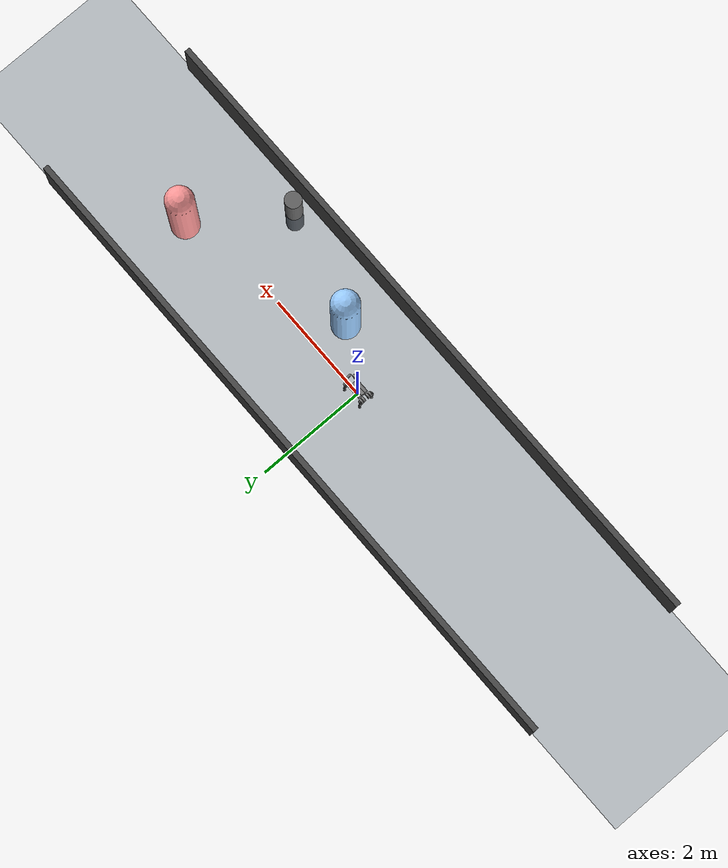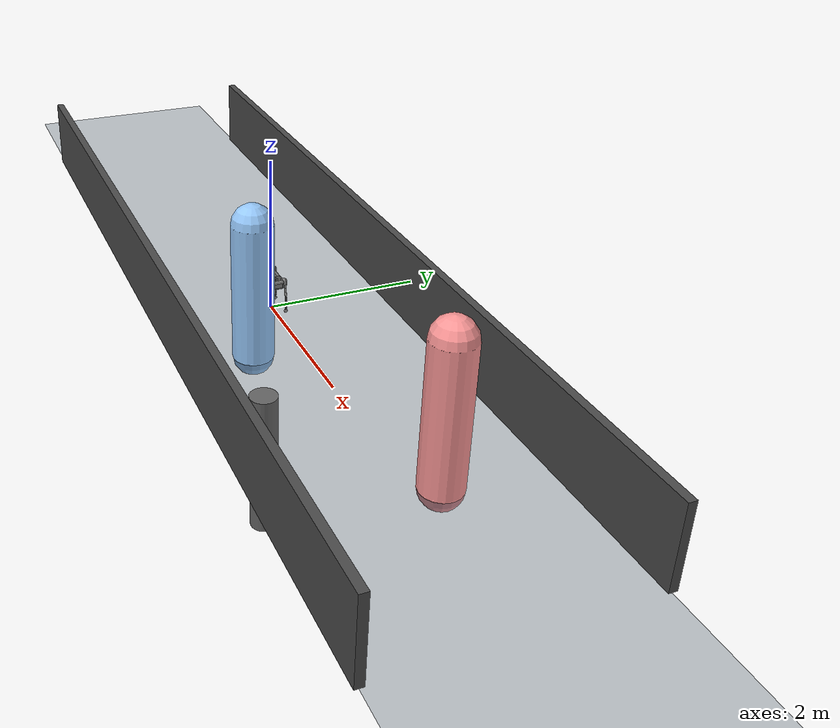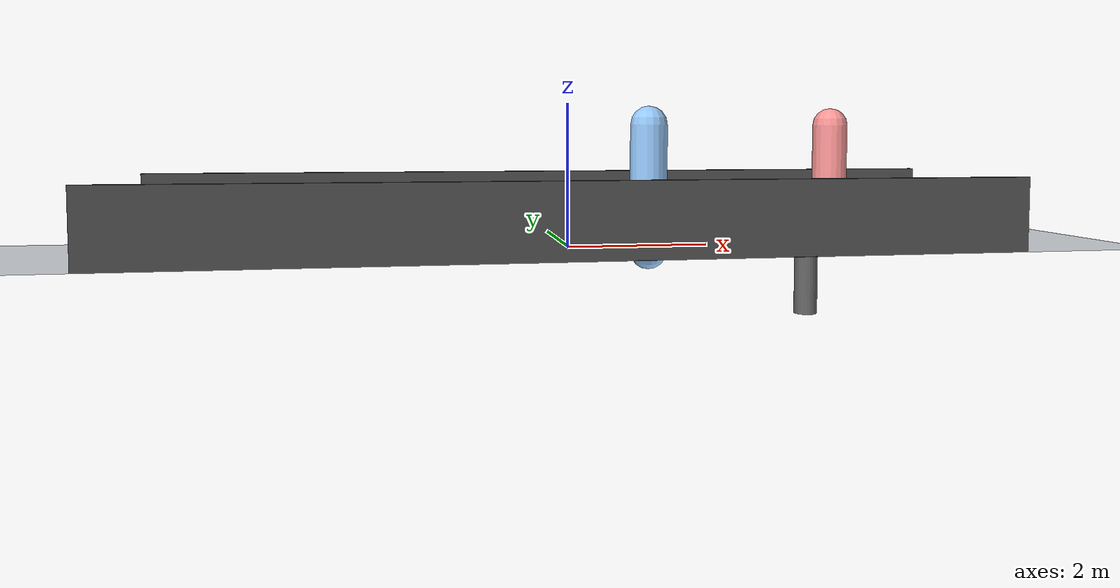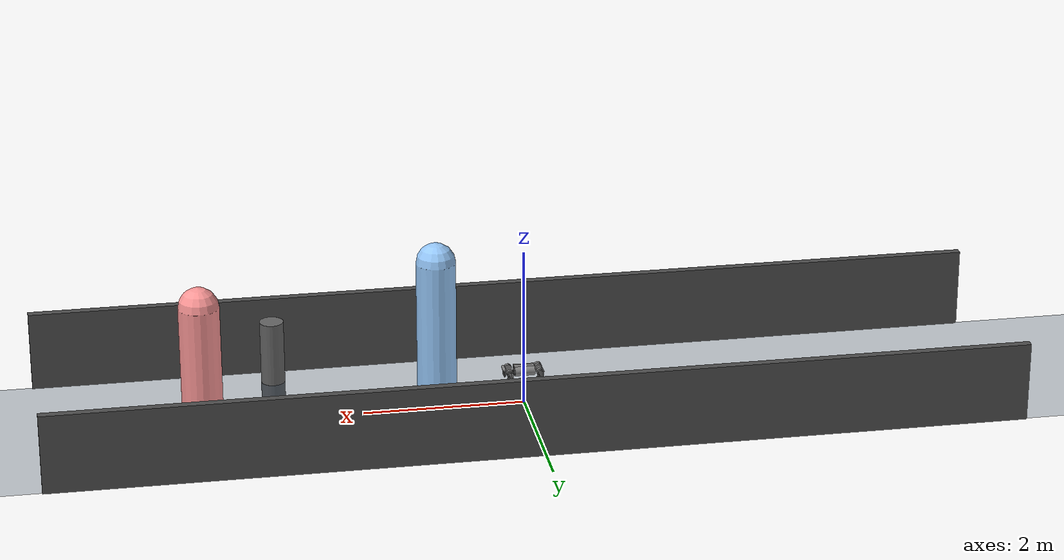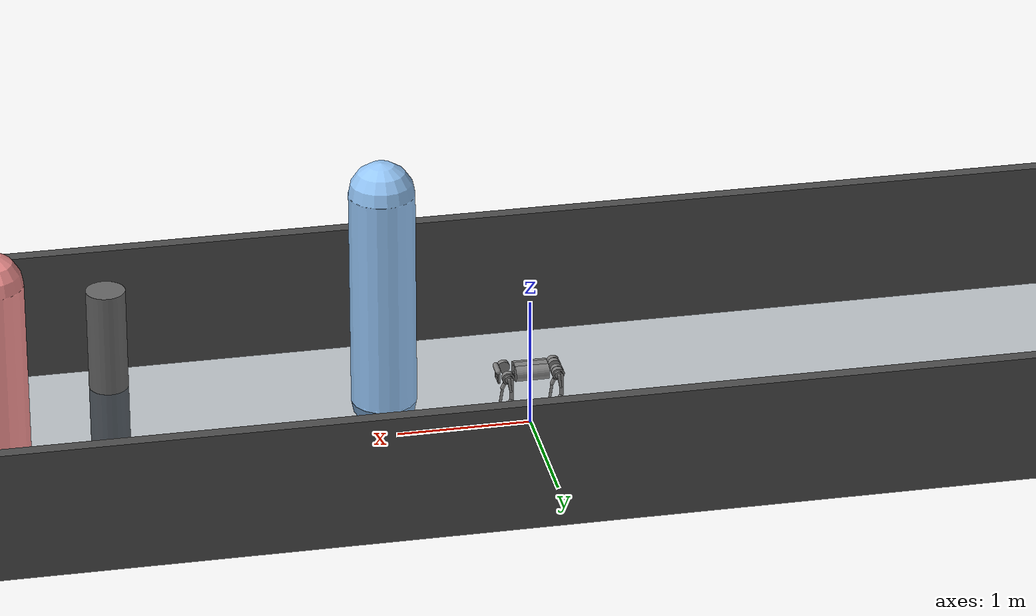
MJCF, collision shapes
<mujoco model="scene5_real_sidewalk">
  <compiler angle="degree"/>
  <option timestep="0.002" gravity="0 0 -9.81"/>
  <include file="unitree_go1/go1.xml"/>

  <asset>
    <texture name="sky" type="skybox" builtin="gradient"
             rgb1="0.45 0.55 0.75" rgb2="0.08 0.10 0.18" width="512" height="512"/>
    <texture name="tex_floor" type="2d" builtin="checker"
             width="512" height="512" rgb1="0.2 0.3 0.4" rgb2="0.1 0.15 0.2"
             mark="cross" markrgb="0.8 0.8 0.8"/>
    <material name="mat_floor" texture="tex_floor" reflectance="0.2"/>
  </asset>

  <worldbody>
    <light name="sun" pos="0 0 5" dir="0 0 -1" directional="true"
           diffuse="1 1 1" specular="0.1 0.1 0.1"/>

    <!-- Floor: 12m long, 4m wide sidewalk -->
    <geom name="floor" type="plane" size="8 1.5 0.1" material="mat_floor"/>

    <!-- Sidewalk curbs (left and right) -->
    <geom name="curb_left"  type="box" pos="0  1.5 0.5" size="6 0.05 0.5" rgba="0.3 0.3 0.3 1"/>
    <geom name="curb_right" type="box" pos="0 -1.5 0.5" size="6 0.05 0.5" rgba="0.3 0.3 0.3 1"/>

    <!-- Oncoming pedestrian (Against Traffic): moves leftward (-X) -->
    <body name="person1" pos="4 0.3 0">
      <joint name="person1_slide" type="slide" axis="1 0 0" limited="true" range="-6 6"/>
      <geom type="capsule" size="0.25" fromto="0 0 0 0 0 1.7" rgba="1 0.6 0.6 1"/>
    </body>

    <!-- Same-direction pedestrian (With Traffic): moves rightward (+X) -->
    <body name="person2" pos="1 -0.6 0">
      <joint name="person2_slide" type="slide" axis="1 0 0" limited="true" range="-6 6"/>
      <geom type="capsule" size="0.25" fromto="0 0 0 0 0 1.7" rgba="0.6 0.8 1 1"/>
    </body>

    <!-- Optional: static obstacle on right (to encourage right-side bias) -->
    <body name="lamp_post" pos="3 -1.2 0" quat="1 0 0 0">
      <geom type="cylinder" size="0.15 0.8" rgba="0.4 0.4 0.4 1"/>
    </body>
  </worldbody>
</mujoco>

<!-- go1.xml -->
<mujoco model="go1">
  <compiler angle="radian" meshdir="assets" autolimits="true"/>

  <option cone="elliptic" impratio="100"/>

  <default>
    <default class="go1">
      <geom friction="0.6" margin="0.001" condim="1"/>
      <joint axis="0 1 0" damping="2" armature="0.01" frictionloss="0.2"/>
      <position kp="100" forcerange="-23.7 23.7"/>
      <default class="abduction">
        <joint axis="1 0 0" damping="1" range="-0.863 0.863"/>
        <position ctrlrange="-0.863 0.863"/>
      </default>
      <default class="hip">
        <joint range="-0.686 4.501"/>
        <position ctrlrange="-0.686 4.501"/>
      </default>
      <default class="knee">
        <joint range="-2.818 -0.888"/>
        <position forcerange="-35.55 35.55" ctrlrange="-2.818 -0.888"/>
      </default>
      <default class="visual">
        <geom type="mesh" contype="0" conaffinity="0" group="2" material="dark"/>
      </default>
      <default class="collision">
        <geom group="3" type="capsule"/>
        <default class="hip_left1">
          <geom size="0.046 0.02" pos="0 0.045 0" quat="1 1 0 0" type="cylinder"/>
        </default>
        <default class="hip_left2">
          <geom size="0.031 0.02" pos="0 0.065 0" quat="1 1 0 0" type="cylinder"/>
        </default>
        <default class="hip_left3">
          <geom size="0.046 0.02" quat="1 1 0 0" type="cylinder"/>
        </default>
        <default class="hip_right1">
          <geom size="0.046 0.02" pos="0 -0.045 0" quat="1 1 0 0" type="cylinder"/>
        </default>
        <default class="hip_right2">
          <geom size="0.031 0.02" pos="0 -0.065 0" quat="1 1 0 0" type="cylinder"/>
        </default>
        <default class="hip_right3">
          <geom size="0.046 0.02" quat="1 1 0 0" type="cylinder"/>
        </default>
        <default class="thigh1">
          <geom size="0.015" fromto="-0.02 0 0 -0.02 0 -0.16"/>
        </default>
        <default class="thigh2">
          <geom size="0.015" fromto="0 0 0 -0.02 0 -0.1"/>
        </default>
        <default class="thigh3">
          <geom size="0.015" fromto="-0.02 0 -0.16 0 0 -0.2"/>
        </default>
        <default class="calf1">
          <geom size="0.01" fromto="0 0 0 0.02 0 -0.13"/>
        </default>
        <default class="calf2">
          <geom size="0.01" fromto="0.02 0 -0.13 0 0 -0.2"/>
        </default>
        <default class="foot">
          <geom type="sphere" size="0.023" pos="0 0 -0.213" priority="1" solimp="0.015 1 0.023" condim="6"
            friction="0.8 0.02 0.01"/>
        </default>
      </default>
    </default>
  </default>

  <asset>
    <material name="dark" rgba="0.2 0.2 0.2 1"/>
    <mesh class="go1" file="assets/trunk.stl"/>
    <mesh class="go1" file="assets/hip.stl"/>
    <mesh class="go1" file="assets/thigh_mirror.stl"/>
    <mesh class="go1" file="assets/calf.stl"/>
    <mesh class="go1" file="assets/thigh.stl"/>
  </asset>

  <worldbody>
    <light name="spotlight" mode="targetbodycom" target="trunk" pos="0 -1 2"/>
    <body name="trunk" pos="0 0 0.445" childclass="go1">
      <camera name="tracking" mode="trackcom" pos="0 -1 0.8" xyaxes="1 0 0 0 1 1"/>
      <site name="head" pos="0.3 0 0" rgba="1 0 0 1" size="0.02" group="5"/>
      <inertial pos="0.0223 0.002 -0.0005" quat="-0.00342088 0.705204 0.000106698 0.708996" mass="5.204"
        diaginertia="0.0716565 0.0630105 0.0168101"/>
      <freejoint/>
      <geom class="visual" mesh="trunk"/>
      <geom class="collision" size="0.125 0.04 0.057" type="box"/>
      <geom class="collision" quat="1 0 1 0" pos="0 -0.04 0" size="0.058 0.125" type="cylinder"/>
      <geom class="collision" quat="1 0 1 0" pos="0 +0.04 0" size="0.058 0.125" type="cylinder"/>
      <geom class="collision" pos="0.25 0 0" size="0.005 0.06 0.05" type="box"/>
      <geom class="collision" pos="0.25 0.06 -0.01" size="0.009 0.035"/>
      <geom class="collision" pos="0.25 -0.06 -0.01" size="0.009 0.035"/>
      <geom class="collision" pos="0.25 0 -0.05" size="0.01 0.06" quat="1 1 0 0"/>
      <geom class="collision" pos="0.255 0 0.0355" size="0.021 0.052" quat="1 1 0 0"/>
      <site name="imu" pos="0 0 0"/>
      <body name="FR_hip" pos="0.1881 -0.04675 0">
        <inertial pos="-0.0049166 0.00762615 -8.865e-05" quat="0.507341 0.514169 0.495027 0.482891" mass="0.68"
          diaginertia="0.000734064 0.000468438 0.000398719"/>
        <joint class="abduction" name="FR_hip_joint"/>
        <geom class="visual" mesh="hip" quat="1 0 0 0"/>
        <geom class="hip_right1"/>
        <geom class="hip_right2"/>
        <body name="FR_thigh" pos="0 -0.08 0">
          <inertial pos="-0.00304722 0.019315 -0.0305004" quat="0.65243 -0.0272313 0.0775126 0.753383" mass="1.009"
            diaginertia="0.00478717 0.00460903 0.000709268"/>
          <joint class="hip" name="FR_thigh_joint"/>
          <geom class="visual" mesh="thigh_mirror"/>
          <geom class="thigh1"/>
          <geom class="thigh2"/>
          <geom class="thigh3"/>
          <body name="FR_calf" pos="0 0 -0.213">
            <inertial pos="0.00429862 0.000976676 -0.146197" quat="0.691246 0.00357467 0.00511118 0.722592"
              mass="0.195862" diaginertia="0.00149767 0.00148468 3.58427e-05"/>
            <joint class="knee" name="FR_calf_joint"/>
            <geom class="visual" mesh="calf"/>
            <geom class="calf1"/>
            <geom class="calf2"/>
            <geom name="FR" class="foot"/>
            <site name="FR" pos="0 0 -0.213" type="sphere" size="0.023" group="5"/>
          </body>
        </body>
      </body>
      <body name="FL_hip" pos="0.1881 0.04675 0">
        <inertial pos="-0.0049166 -0.00762615 -8.865e-05" quat="0.482891 0.495027 0.514169 0.507341" mass="0.68"
          diaginertia="0.000734064 0.000468438 0.000398719"/>
        <joint class="abduction" name="FL_hip_joint"/>
        <geom class="visual" mesh="hip"/>
        <geom class="hip_left1"/>
        <geom class="hip_left2"/>
        <body name="FL_thigh" pos="0 0.08 0">
          <inertial pos="-0.00304722 -0.019315 -0.0305004" quat="0.753383 0.0775126 -0.0272313 0.65243" mass="1.009"
            diaginertia="0.00478717 0.00460903 0.000709268"/>
          <joint class="hip" name="FL_thigh_joint"/>
          <geom class="visual" mesh="thigh"/>
          <geom class="thigh1"/>
          <geom class="thigh2"/>
          <geom class="thigh3"/>
          <body name="FL_calf" pos="0 0 -0.213">
            <inertial pos="0.00429862 0.000976676 -0.146197" quat="0.691246 0.00357467 0.00511118 0.722592"
              mass="0.195862" diaginertia="0.00149767 0.00148468 3.58427e-05"/>
            <joint class="knee" name="FL_calf_joint"/>
            <geom class="visual" mesh="calf"/>
            <geom class="calf1"/>
            <geom class="calf2"/>
            <geom name="FL" class="foot"/>
            <site name="FL" pos="0 0 -0.213" type="sphere" size="0.023" group="5"/>
          </body>
        </body>
      </body>
      <body name="RR_hip" pos="-0.1881 -0.04675 0">
        <inertial pos="0.0049166 0.00762615 -8.865e-05" quat="0.495027 0.482891 0.507341 0.514169" mass="0.68"
          diaginertia="0.000734064 0.000468438 0.000398719"/>
        <joint class="abduction" name="RR_hip_joint"/>
        <geom class="visual" quat="0 0 0 -1" mesh="hip"/>
        <geom class="hip_right1"/>
        <geom class="hip_right2"/>
        <geom class="hip_right3"/>
        <body name="RR_thigh" pos="0 -0.08 0">
          <inertial pos="-0.00304722 0.019315 -0.0305004" quat="0.65243 -0.0272313 0.0775126 0.753383" mass="1.009"
            diaginertia="0.00478717 0.00460903 0.000709268"/>
          <joint class="hip" name="RR_thigh_joint"/>
          <geom class="visual" mesh="thigh_mirror"/>
          <geom class="thigh1"/>
          <geom class="thigh2"/>
          <geom class="thigh3"/>
          <body name="RR_calf" pos="0 0 -0.213">
            <inertial pos="0.00429862 0.000976676 -0.146197" quat="0.691246 0.00357467 0.00511118 0.722592"
              mass="0.195862" diaginertia="0.00149767 0.00148468 3.58427e-05"/>
            <joint class="knee" name="RR_calf_joint"/>
            <geom class="visual" mesh="calf"/>
            <geom class="calf1"/>
            <geom class="calf2"/>
            <geom name="RR" class="foot"/>
            <site name="RR" pos="0 0 -0.213" type="sphere" size="0.023" group="5"/>
          </body>
        </body>
      </body>
      <body name="RL_hip" pos="-0.1881 0.04675 0">
        <inertial pos="0.0049166 -0.00762615 -8.865e-05" quat="0.514169 0.507341 0.482891 0.495027" mass="0.68"
          diaginertia="0.000734064 0.000468438 0.000398719"/>
        <joint class="abduction" name="RL_hip_joint"/>
        <geom class="visual" quat="0 0 1 0" mesh="hip"/>
        <geom class="hip_left1"/>
        <geom class="hip_left2"/>
        <geom class="hip_left3"/>
        <body name="RL_thigh" pos="0 0.08 0">
          <inertial pos="-0.00304722 -0.019315 -0.0305004" quat="0.753383 0.0775126 -0.0272313 0.65243" mass="1.009"
            diaginertia="0.00478717 0.00460903 0.000709268"/>
          <joint class="hip" name="RL_thigh_joint"/>
          <geom class="visual" mesh="thigh"/>
          <geom class="thigh1"/>
          <geom class="thigh2"/>
          <geom class="thigh3"/>
          <body name="RL_calf" pos="0 0 -0.213">
            <inertial pos="0.00429862 0.000976676 -0.146197" quat="0.691246 0.00357467 0.00511118 0.722592"
              mass="0.195862" diaginertia="0.00149767 0.00148468 3.58427e-05"/>
            <joint class="knee" name="RL_calf_joint"/>
            <geom class="visual" mesh="calf"/>
            <geom class="calf1"/>
            <geom class="calf2"/>
            <geom name="RL" class="foot"/>
            <site name="RL" pos="0 0 -0.213" type="sphere" size="0.023" group="5"/>
          </body>
        </body>
      </body>
    </body>
  </worldbody>

  <actuator>
    <position class="abduction" name="FR_hip" joint="FR_hip_joint"/>
    <position class="hip" name="FR_thigh" joint="FR_thigh_joint"/>
    <position class="knee" name="FR_calf" joint="FR_calf_joint"/>
    <position class="abduction" name="FL_hip" joint="FL_hip_joint"/>
    <position class="hip" name="FL_thigh" joint="FL_thigh_joint"/>
    <position class="knee" name="FL_calf" joint="FL_calf_joint"/>
    <position class="abduction" name="RR_hip" joint="RR_hip_joint"/>
    <position class="hip" name="RR_thigh" joint="RR_thigh_joint"/>
    <position class="knee" name="RR_calf" joint="RR_calf_joint"/>
    <position class="abduction" name="RL_hip" joint="RL_hip_joint"/>
    <position class="hip" name="RL_thigh" joint="RL_thigh_joint"/>
    <position class="knee" name="RL_calf" joint="RL_calf_joint"/>
  </actuator>

  <keyframe>
    <key name="home" qpos="0 0 0.27 1 0 0 0 0 0.9 -1.8 0 0.9 -1.8 0 0.9 -1.8 0 0.9 -1.8"
      ctrl="0 0.9 -1.8 0 0.9 -1.8 0 0.9 -1.8 0 0.9 -1.8"/>
  </keyframe>
</mujoco>
